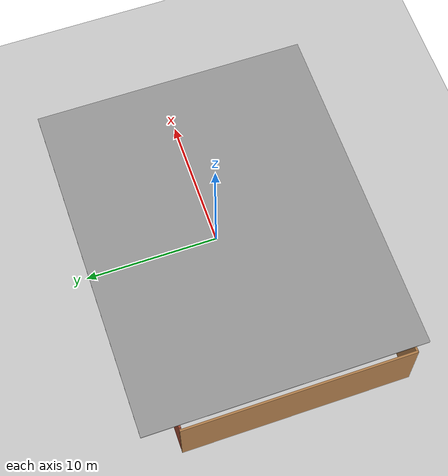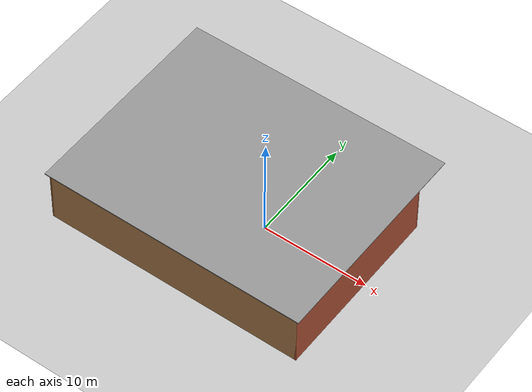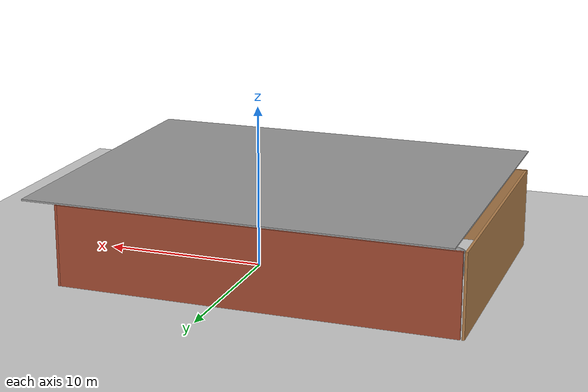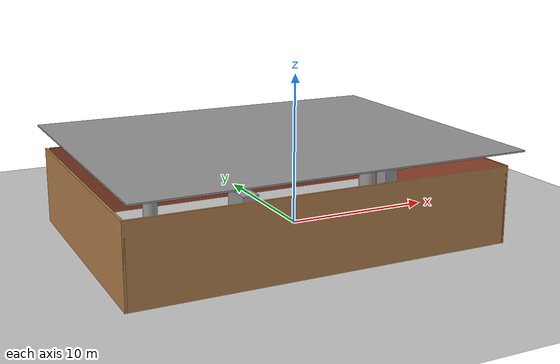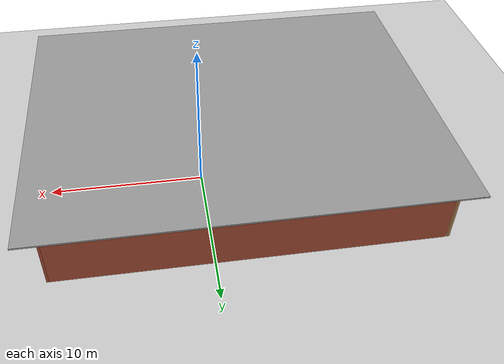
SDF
<sdf version="1.6">
 <world name="default">
  <light name="sun" type="directional">
   <pose>0 0 10 0 -0 0</pose>
   <diffuse>0.8 0.8 0.8 1</diffuse>
   <specular>0.2 0.2 0.2 1</specular>
   <attenuation>
    <range>1000</range>
    <constant>0.9</constant>
    <linear>0.01</linear>
    <quadratic>0.001</quadratic>
   </attenuation>
   <direction>-0.5 0.1 -0.9</direction>
  </light>
  <model name="ground_plane">
   <static>1</static>
   <link name="link">
    <collision name="collision">
     <geometry><plane><normal>0 0 1</normal><size>100 100</size></plane></geometry>
     <surface>
      <contact><collide_bitmask>65535</collide_bitmask></contact>
      <friction><ode><mu>100</mu><mu2>50</mu2></ode></friction>
     </surface>
    </collision>
    <visual name="visual">
     <cast_shadows>0</cast_shadows>
     <geometry><plane><normal>0 0 1</normal><size>100 100</size></plane></geometry>
     <material>
      <script><uri>file://media/materials/scripts/gazebo.material</uri><name>Gazebo/Grey</name></script>
     </material>
    </visual>
   </link>
  </model>
  <gravity>0 0 -9.8</gravity>
  <magnetic_field>6e-06 2.3e-05 -4.2e-05</magnetic_field>
  <atmosphere type="adiabatic"/>
  <physics name="default_physics" default="0" type="ode">
   <max_step_size>0.001</max_step_size>
   <real_time_factor>1</real_time_factor>
   <real_time_update_rate>1000</real_time_update_rate>
  </physics>
  <scene><ambient>0.4 0.4 0.4 1</ambient><background>0.7 0.7 0.7 1</background><shadows>1</shadows></scene>
  <spherical_coordinates>
   <surface_model>EARTH_WGS84</surface_model>
   <latitude_deg>0</latitude_deg>
   <longitude_deg>0</longitude_deg>
   <elevation>0</elevation>
   <heading_deg>0</heading_deg>
  </spherical_coordinates>
  <model name="room4walls">
   <pose>-2.37478 -0.938907 0 0 -0 0</pose>
   <link name="Wall_10">
    <collision name="Wall_10_Collision">
     <geometry><box><size>16.75 0.15 5</size></box></geometry>
     <pose>0 0 2.5 0 -0 0</pose>
    </collision>
    <visual name="Wall_10_Visual">
     <pose>0 0 2.5 0 -0 0</pose>
     <geometry><box><size>16.75 0.15 5</size></box></geometry>
     <material>
      <script><uri>file://media/materials/scripts/gazebo.material</uri><name>Gazebo/Wood</name></script>
      <ambient>1 1 1 1</ambient>
     </material>
     <meta><layer>0</layer></meta>
    </visual>
    <pose>-12.175 0 0 0 -0 -1.5708</pose>
   </link>
   <link name="Wall_11">
    <collision name="Wall_11_Collision">
     <geometry><box><size>24.5 0.15 5</size></box></geometry>
     <pose>0 0 2.5 0 -0 0</pose>
    </collision>
    <visual name="Wall_11_Visual">
     <pose>0 0 2.5 0 -0 0</pose>
     <geometry><box><size>24.5 0.15 5</size></box></geometry>
     <material>
      <script><uri>file://media/materials/scripts/gazebo.material</uri><name>Gazebo/Wood</name></script>
      <ambient>1 1 1 1</ambient>
     </material>
     <meta><layer>0</layer></meta>
    </visual>
    <pose>-0 -8.3 0 0 -0 0</pose>
   </link>
   <link name="Wall_12">
    <collision name="Wall_12_Collision">
     <geometry><box><size>16.75 0.15 5</size></box></geometry>
     <pose>0 0 2.5 0 -0 0</pose>
    </collision>
    <visual name="Wall_12_Visual">
     <pose>0 0 2.5 0 -0 0</pose>
     <geometry><box><size>16.75 0.15 5</size></box></geometry>
     <material>
      <script><uri>file://media/materials/scripts/gazebo.material</uri><name>Gazebo/Bricks</name></script>
      <ambient>1 1 1 1</ambient>
     </material>
     <meta><layer>0</layer></meta>
    </visual>
    <pose>12.175 0 0 0 -0 1.5708</pose>
   </link>
   <link name="Wall_13">
    <collision name="Wall_13_Collision">
     <geometry><box><size>24.25 0.15 5</size></box></geometry>
     <pose>0 0 2.5 0 -0 0</pose>
    </collision>
    <visual name="Wall_13_Visual">
     <pose>0 0 2.5 0 -0 0</pose>
     <geometry><box><size>24.25 0.15 5</size></box></geometry>
     <material>
      <script><uri>file://media/materials/scripts/gazebo.material</uri><name>Gazebo/Bricks</name></script>
      <ambient>1 1 1 1</ambient>
     </material>
     <meta><layer>0</layer></meta>
    </visual>
    <pose>0.125 8.3 0 0 -0 3.14159</pose>
   </link>
   <static>1</static>
  </model>
  <model name="unit_cylinder">
   <pose>-8.5664 4.41686 2.26788 0 -0 0.160187</pose>
   <link name="link">
    <inertial>
     <mass>1</mass>
     <inertia><ixx>0.145833</ixx><ixy>0</ixy><ixz>0</ixz><iyy>0.145833</iyy><iyz>0</iyz><izz>0.125</izz></inertia>
    </inertial>
    <collision name="collision">
     <geometry><cylinder><radius>0.5</radius><length>4.53578</length></cylinder></geometry>
    </collision>
    <visual name="visual">
     <geometry><cylinder><radius>0.5</radius><length>4.53578</length></cylinder></geometry>
     <material>
      <script><name>Gazebo/Grey</name><uri>file://media/materials/scripts/gazebo.material</uri></script>
     </material>
    </visual>
   </link>
  </model>
  <model name="unit_sphere">
   <pose>-11.8533 -1.91796 0.952373 0 -0 0</pose>
   <link name="link">
    <inertial>
     <mass>1</mass>
     <inertia><ixx>0.1</ixx><ixy>0</ixy><ixz>0</ixz><iyy>0.1</iyy><iyz>0</iyz><izz>0.1</izz></inertia>
    </inertial>
    <collision name="collision"><geometry><sphere><radius>0.952375</radius></sphere></geometry></collision>
    <visual name="visual">
     <geometry><sphere><radius>0.952375</radius></sphere></geometry>
     <material>
      <script><name>Gazebo/Grey</name><uri>file://media/materials/scripts/gazebo.material</uri></script>
     </material>
    </visual>
   </link>
  </model>
  <model name="unit_box">
   <pose>6.55993 -1.0758 1.97779 1e-06 -0 0.055409</pose>
   <link name="link">
    <inertial>
     <mass>1</mass>
     <inertia>
      <ixx>0.166667</ixx>
      <ixy>0</ixy>
      <ixz>0</ixz>
      <iyy>0.166667</iyy>
      <iyz>0</iyz>
      <izz>0.166667</izz>
     </inertia>
    </inertial>
    <collision name="collision"><geometry><box><size>1 1 3.95557</size></box></geometry></collision>
    <visual name="visual">
     <geometry><box><size>1 1 3.95557</size></box></geometry>
     <material>
      <script><name>Gazebo/Grey</name><uri>file://media/materials/scripts/gazebo.material</uri></script>
     </material>
    </visual>
   </link>
  </model>
  <model name="unit_cylinder_clone">
   <pose>1.48349 -6.57863 2.70816 0 -0 0.014468</pose>
   <link name="link">
    <inertial>
     <mass>1</mass>
     <inertia><ixx>0.145833</ixx><ixy>0</ixy><ixz>0</ixz><iyy>0.145833</iyy><iyz>0</iyz><izz>0.125</izz></inertia>
    </inertial>
    <collision name="collision">
     <geometry><cylinder><radius>0.5</radius><length>5.41632</length></cylinder></geometry>
    </collision>
    <visual name="visual">
     <geometry><cylinder><radius>0.5</radius><length>5.41632</length></cylinder></geometry>
     <material>
      <script><name>Gazebo/Grey</name><uri>file://media/materials/scripts/gazebo.material</uri></script>
     </material>
    </visual>
   </link>
  </model>
  <model name="unit_box_clone">
   <pose>-6.47868 -6.14183 2.32158 1e-06 -0 0.001357</pose>
   <link name="link">
    <inertial>
     <mass>1</mass>
     <inertia>
      <ixx>0.166667</ixx>
      <ixy>0</ixy>
      <ixz>0</ixz>
      <iyy>0.166667</iyy>
      <iyz>0</iyz>
      <izz>0.166667</izz>
     </inertia>
    </inertial>
    <collision name="collision"><geometry><box><size>1 2.06045 4.64315</size></box></geometry></collision>
    <visual name="visual">
     <geometry><box><size>1 2.06045 4.64315</size></box></geometry>
     <material>
      <script><name>Gazebo/Grey</name><uri>file://media/materials/scripts/gazebo.material</uri></script>
     </material>
    </visual>
   </link>
  </model>
  <model name="ceiling">
   <link name="link">
    <inertial>
     <mass>1</mass>
     <inertia>
      <ixx>0.166667</ixx>
      <ixy>0</ixy>
      <ixz>0</ixz>
      <iyy>0.166667</iyy>
      <iyz>0</iyz>
      <izz>0.166667</izz>
     </inertia>
    </inertial>
    <gravity>0</gravity>
    <visual name="visual">
     <geometry><box><size>25 20 0.1</size></box></geometry>
     <material>
      <script><name>Gazebo/Grey</name><uri>file://media/materials/scripts/gazebo.material</uri></script>
      <shader type="pixel"><normal_map>__default__</normal_map></shader>
      <ambient>0.3 0.3 0.3 1</ambient>
      <diffuse>0.7 0.7 0.7 1</diffuse>
      <specular>0.01 0.01 0.01 1</specular>
      <emissive>0 0 0 1</emissive>
     </material>
    </visual>
    <collision name="collision">
     <geometry><box><size>25 20 0.1</size></box></geometry>
     <surface>
      <friction>
       <ode><mu>1</mu><mu2>1</mu2><fdir1>0 0 0</fdir1><slip1>0</slip1><slip2>0</slip2></ode>
       <torsional>
        <coefficient>1</coefficient>
        <patch_radius>0</patch_radius>
        <surface_radius>0</surface_radius>
        <use_patch_radius>1</use_patch_radius>
        <ode><slip>0</slip></ode>
       </torsional>
      </friction>
      <bounce><restitution_coefficient>0</restitution_coefficient><threshold>1e+06</threshold></bounce>
      <contact>
       <collide_without_contact>0</collide_without_contact>
       <collide_without_contact_bitmask>1</collide_without_contact_bitmask>
       <collide_bitmask>1</collide_bitmask>
       <ode>
        <soft_cfm>0</soft_cfm>
        <soft_erp>0.2</soft_erp>
        <kp>1e+13</kp>
        <kd>1</kd>
        <max_vel>0.01</max_vel>
        <min_depth>0</min_depth>
       </ode>
       <bullet>
        <split_impulse>1</split_impulse>
        <split_impulse_penetration_threshold>-0.01</split_impulse_penetration_threshold>
        <soft_cfm>0</soft_cfm>
        <soft_erp>0.2</soft_erp>
        <kp>1e+13</kp>
        <kd>1</kd>
       </bullet>
      </contact>
     </surface>
    </collision>
   </link>
   <static>0</static>
   <pose>-2 0 6 0 -0 0</pose>
  </model>
 </world>
</sdf>
